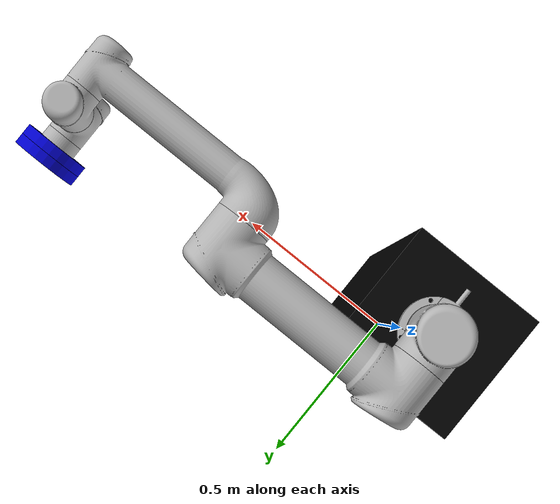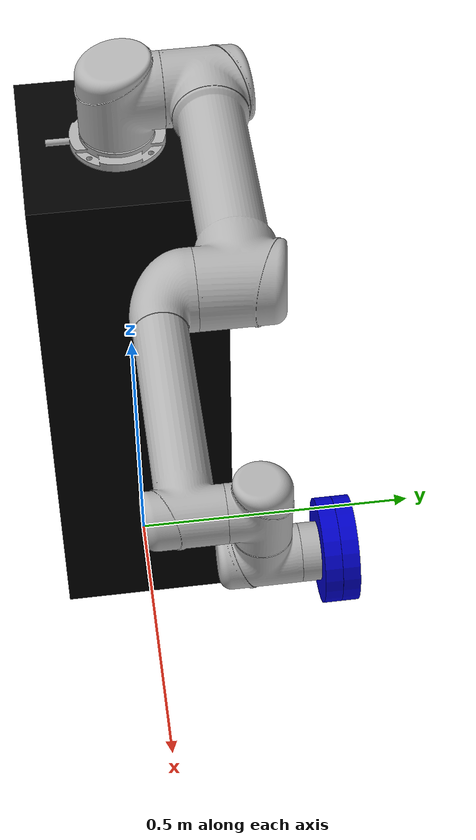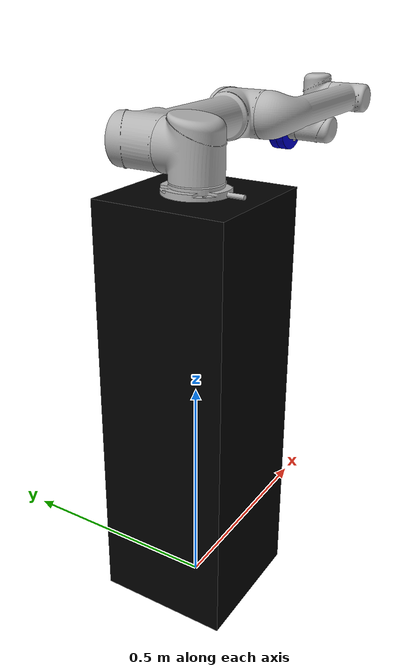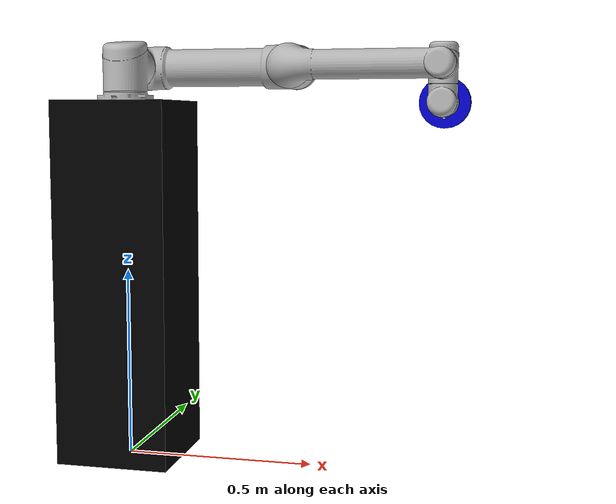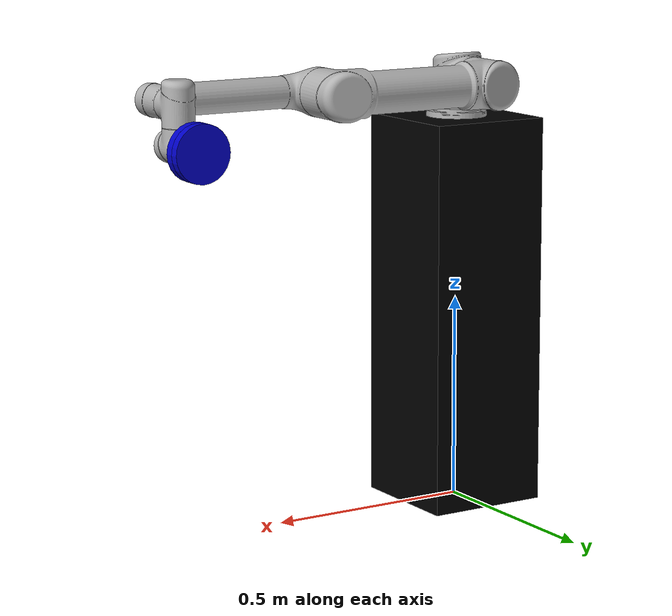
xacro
<?xml version="1.0"?>
<robot xmlns:xacro="http://wiki.ros.org/xacro"
       name="ur5" >

  <xacro:arg name="transmission_hw_interface" default="hardware_interface/PositionJointInterface"/>

  <!-- common stuff -->
  <xacro:include filename="$(find ur_description)/urdf/common.gazebo.xacro" />

  <!-- ur5 -->
  <xacro:include filename="$(find ur_description)/urdf/ur5.urdf.xacro" />

  <!-- arm -->
  <xacro:ur5_robot prefix="" joint_limited="false"
    transmission_hw_interface="$(arg transmission_hw_interface)"
  />

  <link name="world" />

  <joint name="pedestal_joint" type="fixed">
    <origin rpy="0 0 0" xyz="0.0 0.0 0.0"/>
    <parent link="world"/>
    <child link="pedestal_link"/>
  </joint>

  <link name="pedestal_link">
    <visual>
      <origin xyz="0 0 0.475"/>
      <geometry>
        <box size="0.3 0.3 0.95"/>
      </geometry>
      <material name="pedestal_color">
        <color rgba="0 0 0 1"/>
      </material>
    </visual>
    <collision>
      <origin xyz="0 0 0.475"/>
      <geometry>
        <box size="0.3 0.3 0.95"/>
      </geometry>
    </collision>
    <inertial>
      <mass value="500"/>
      <origin rpy="0 0 0" xyz="0 0 0"/>
      <inertia ixx="0.001" ixy="0" ixz="0" iyy="0.001" iyz="0" izz="0.001"/>
    </inertial>
  </link>
  <gazebo reference="pedestal_link">
    <material>Gazebo/DarkGray</material>
  </gazebo>

  <joint name="ur5_to_pedestal" type="fixed">
    <parent link="world"/>
    <child link="base_link"/>
    <origin rpy="0 0 0" xyz="0.0 0.0 0.95"/>
  </joint>

</robot>

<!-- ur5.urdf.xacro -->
<robot xmlns:xacro="http://wiki.ros.org/xacro">

  <xacro:include filename="$(find ur_description)/urdf/ur.transmission.xacro" />
  <xacro:include filename="$(find ur_description)/urdf/ur.gazebo.xacro" />

  <xacro:macro name="cylinder_inertial" params="radius length mass *origin">
    <inertial>
      <mass value="${mass}" />
      <xacro:insert_block name="origin" />
      <inertia ixx="${0.0833333 * mass * (3 * radius * radius + length * length)}" ixy="0.0" ixz="0.0"
        iyy="${0.0833333 * mass * (3 * radius * radius + length * length)}" iyz="0.0"
        izz="${0.5 * mass * radius * radius}" />
    </inertial>
  </xacro:macro>

  <xacro:macro name="ur5_robot" params="prefix joint_limited
    shoulder_pan_lower_limit:=${-pi}    shoulder_pan_upper_limit:=${pi}
    shoulder_lift_lower_limit:=${-pi}    shoulder_lift_upper_limit:=${pi}
    elbow_joint_lower_limit:=${-pi}    elbow_joint_upper_limit:=${pi}
    wrist_1_lower_limit:=${-pi}    wrist_1_upper_limit:=${pi}
    wrist_2_lower_limit:=${-pi}    wrist_2_upper_limit:=${pi}
    wrist_3_lower_limit:=${-pi}    wrist_3_upper_limit:=${pi}
    transmission_hw_interface:=hardware_interface/PositionJointInterface
    safety_limits:=false safety_pos_margin:=0.15
    safety_k_position:=20">

    <!-- Inertia parameters -->
    <xacro:property name="base_mass" value="4.0" />  <!-- This mass might be incorrect -->
    <xacro:property name="shoulder_mass" value="3.7000" />
    <xacro:property name="upper_arm_mass" value="8.3930" />
    <xacro:property name="forearm_mass" value="2.2750" />
    <xacro:property name="wrist_1_mass" value="1.2190" />
    <xacro:property name="wrist_2_mass" value="1.2190" />
    <xacro:property name="wrist_3_mass" value="0.1879" />

    <xacro:property name="shoulder_cog" value="0.0 0.00193 -0.02561" />
    <xacro:property name="upper_arm_cog" value="0.0 -0.024201 0.2125" />
    <xacro:property name="forearm_cog" value="0.0 0.0265 0.11993" />
    <xacro:property name="wrist_1_cog" value="0.0 0.110949 0.01634" />
    <xacro:property name="wrist_2_cog" value="0.0 0.0018 0.11099" />
    <xacro:property name="wrist_3_cog" value="0.0 0.001159 0.0" />

    <!-- Kinematic model -->
    <!-- Properties from urcontrol.conf -->
    <xacro:property name="d1" value="0.089159" />
    <xacro:property name="a2" value="-0.42500" />
    <xacro:property name="a3" value="-0.39225" />
    <xacro:property name="d4" value="0.10915" />
    <xacro:property name="d5" value="0.09465" />
    <xacro:property name="d6" value="0.0823" />

    <!-- Arbitrary offsets for shoulder/elbow joints -->
    <xacro:property name="shoulder_offset" value="0.13585" />  <!-- measured from model -->
    <xacro:property name="elbow_offset" value="-0.1197" /> <!-- measured from model -->

    <!-- link lengths used in model -->
    <xacro:property name="shoulder_height" value="${d1}" />
    <xacro:property name="upper_arm_length" value="${-a2}" />
    <xacro:property name="forearm_length" value="${-a3}" />
    <xacro:property name="wrist_1_length" value="${d4 - elbow_offset - shoulder_offset}" />
    <xacro:property name="wrist_2_length" value="${d5}" />
    <xacro:property name="wrist_3_length" value="${d6}" />
    <!--property name="shoulder_height" value="0.089159" /-->
    <!--property name="shoulder_offset" value="0.13585" /-->  <!-- shoulder_offset - elbow_offset + wrist_1_length = 0.10915 -->
    <!--property name="upper_arm_length" value="0.42500" /-->
    <!--property name="elbow_offset" value="0.1197" /-->       <!-- CAD measured -->
    <!--property name="forearm_length" value="0.39225" /-->
    <!--property name="wrist_1_length" value="0.093" /-->     <!-- CAD measured -->
    <!--property name="wrist_2_length" value="0.09465" /-->   <!-- In CAD this distance is 0.930, but in the spec it is 0.09465 -->
    <!--property name="wrist_3_length" value="0.0823" /-->

    <xacro:property name="shoulder_radius" value="0.060" />   <!-- manually measured -->
    <xacro:property name="upper_arm_radius" value="0.054" />  <!-- manually measured -->
    <xacro:property name="elbow_radius" value="0.060" />      <!-- manually measured -->
    <xacro:property name="forearm_radius" value="0.040" />    <!-- manually measured -->
    <xacro:property name="wrist_radius" value="0.045" />      <!-- manually measured -->

    <link name="${prefix}base_link" >
      <visual>
        <geometry>
          <mesh filename="package://ur_description/meshes/ur5/visual/base.dae" />
        </geometry>
        <material name="LightGrey">
          <color rgba="0.7 0.7 0.7 1.0"/>
        </material>
      </visual>
      <collision>
        <geometry>
          <mesh filename="package://ur_description/meshes/ur5/collision/base.stl" />
        </geometry>
      </collision>
      <xacro:cylinder_inertial radius="0.06" length="0.05" mass="${base_mass}">
        <origin xyz="0.0 0.0 0.0" rpy="0 0 0" />
      </xacro:cylinder_inertial>
    </link>

    <joint name="${prefix}shoulder_pan_joint" type="revolute">
      <parent link="${prefix}base_link" />
      <child link = "${prefix}shoulder_link" />
      <origin xyz="0.0 0.0 ${shoulder_height}" rpy="0.0 0.0 0.0" />
      <axis xyz="0 0 1" />
      <xacro:unless value="${joint_limited}">
        <limit lower="${-2.0 * pi}" upper="${2.0 * pi}" effort="150.0" velocity="3.15"/>
        <xacro:if value="${safety_limits}">
          <safety_controller soft_lower_limit="${-2.0 * pi + safety_pos_margin}" soft_upper_limit="${2.0 * pi - safety_pos_margin}" k_position="${safety_k_position}" k_velocity="0.0"/>
        </xacro:if>
      </xacro:unless>
      <xacro:if value="${joint_limited}">
        <limit lower="${shoulder_pan_lower_limit}" upper="${shoulder_pan_upper_limit}" effort="150.0" velocity="3.15"/>
        <xacro:if value="${safety_limits}">
          <safety_controller soft_lower_limit="${shoulder_pan_lower_limit + safety_pos_margin}" soft_upper_limit="${shoulder_pan_upper_limit - safety_pos_margin}" k_position="${safety_k_position}" k_velocity="0.0"/>
        </xacro:if>
      </xacro:if>
      <dynamics damping="0.0" friction="0.0"/>
    </joint>

    <link name="${prefix}shoulder_link">
      <visual>
        <geometry>
          <mesh filename="package://ur_description/meshes/ur5/visual/shoulder.dae" />
        </geometry>
        <material name="LightGrey">
          <color rgba="0.7 0.7 0.7 1.0"/>
        </material>
      </visual>
      <collision>
        <geometry>
          <mesh filename="package://ur_description/meshes/ur5/collision/shoulder.stl" />
        </geometry>
      </collision>
      <xacro:cylinder_inertial radius="0.06" length="0.15" mass="${shoulder_mass}">
        <origin xyz="0.0 0.0 0.0" rpy="0 0 0" />
      </xacro:cylinder_inertial>
    </link>

    <joint name="${prefix}shoulder_lift_joint" type="revolute">
      <parent link="${prefix}shoulder_link" />
      <child link = "${prefix}upper_arm_link" />
      <origin xyz="0.0 ${shoulder_offset} 0.0" rpy="0.0 ${pi / 2.0} 0.0" />
      <axis xyz="0 1 0" />
      <xacro:unless value="${joint_limited}">
        <limit lower="${-2.0 * pi}" upper="${2.0 * pi}" effort="150.0" velocity="3.15"/>
        <xacro:if value="${safety_limits}">
          <safety_controller soft_lower_limit="${-2.0 * pi + safety_pos_margin}" soft_upper_limit="${2.0 * pi - safety_pos_margin}" k_position="${safety_k_position}" k_velocity="0.0"/>
        </xacro:if>
      </xacro:unless>
      <xacro:if value="${joint_limited}">
        <limit lower="${shoulder_lift_lower_limit}" upper="${shoulder_lift_upper_limit}" effort="150.0" velocity="3.15"/>
        <xacro:if value="${safety_limits}">
          <safety_controller soft_lower_limit="${shoulder_lift_lower_limit + safety_pos_margin}" soft_upper_limit="${shoulder_lift_upper_limit - safety_pos_margin}" k_position="${safety_k_position}" k_velocity="0.0"/>
        </xacro:if>
      </xacro:if>
      <dynamics damping="0.0" friction="0.0"/>
    </joint>

    <link name="${prefix}upper_arm_link">
      <visual>
        <geometry>
          <mesh filename="package://ur_description/meshes/ur5/visual/upperarm.dae" />
        </geometry>
        <material name="LightGrey">
          <color rgba="0.7 0.7 0.7 1.0"/>
        </material>
      </visual>
      <collision>
        <geometry>
          <mesh filename="package://ur_description/meshes/ur5/collision/upperarm.stl" />
        </geometry>
      </collision>
      <xacro:cylinder_inertial radius="0.06" length="0.56" mass="${upper_arm_mass}">
        <origin xyz="0.0 0.0 0.28" rpy="0 0 0" />
      </xacro:cylinder_inertial>
    </link>

    <joint name="${prefix}elbow_joint" type="revolute">
      <parent link="${prefix}upper_arm_link" />
      <child link = "${prefix}forearm_link" />
      <origin xyz="0.0 ${elbow_offset} ${upper_arm_length}" rpy="0.0 0.0 0.0" />
      <axis xyz="0 1 0" />
      <xacro:unless value="${joint_limited}">
        <limit lower="${-pi}" upper="${pi}" effort="150.0" velocity="3.15"/>
        <xacro:if value="${safety_limits}">
          <safety_controller soft_lower_limit="${-2.0 * pi + safety_pos_margin}" soft_upper_limit="${2.0 * pi - safety_pos_margin}" k_position="${safety_k_position}" k_velocity="0.0"/>
        </xacro:if>
      </xacro:unless>
      <xacro:if value="${joint_limited}">
        <limit lower="${elbow_joint_lower_limit}" upper="${elbow_joint_upper_limit}" effort="150.0" velocity="3.15"/>
        <xacro:if value="${safety_limits}">
          <safety_controller soft_lower_limit="${elbow_joint_lower_limit + safety_pos_margin}" soft_upper_limit="${elbow_joint_upper_limit - safety_pos_margin}" k_position="${safety_k_position}" k_velocity="0.0"/>
        </xacro:if>
      </xacro:if>
      <dynamics damping="0.0" friction="0.0"/>
    </joint>

    <link name="${prefix}forearm_link">
      <visual>
        <geometry>
          <mesh filename="package://ur_description/meshes/ur5/visual/forearm.dae" />
        </geometry>
        <material name="LightGrey">
          <color rgba="0.7 0.7 0.7 1.0"/>
        </material>
      </visual>
      <collision>
        <geometry>
          <mesh filename="package://ur_description/meshes/ur5/collision/forearm.stl" />
        </geometry>
      </collision>
      <xacro:cylinder_inertial radius="0.06" length="${-a3}" mass="${forearm_mass}">
        <origin xyz="0.0 0.0 ${-a3/2}" rpy="0 0 0" />
      </xacro:cylinder_inertial>
    </link>

    <joint name="${prefix}wrist_1_joint" type="revolute">
      <parent link="${prefix}forearm_link" />
      <child link = "${prefix}wrist_1_link" />
      <origin xyz="0.0 0.0 ${forearm_length}" rpy="0.0 ${pi / 2.0} 0.0" />
      <axis xyz="0 1 0" />
      <xacro:unless value="${joint_limited}">
        <limit lower="${-2.0 * pi}" upper="${2.0 * pi}" effort="28.0" velocity="3.2"/>
        <xacro:if value="${safety_limits}">
          <safety_controller soft_lower_limit="${-2.0 * pi + safety_pos_margin}" soft_upper_limit="${2.0 * pi - safety_pos_margin}" k_position="${safety_k_position}" k_velocity="0.0"/>
        </xacro:if>
      </xacro:unless>
      <xacro:if value="${joint_limited}">
        <limit lower="${wrist_1_lower_limit}" upper="${wrist_1_upper_limit}" effort="28.0" velocity="3.2"/>
        <xacro:if value="${safety_limits}">
          <safety_controller soft_lower_limit="${wrist_1_lower_limit + safety_pos_margin}" soft_upper_limit="${wrist_1_upper_limit - safety_pos_margin}" k_position="${safety_k_position}" k_velocity="0.0"/>
        </xacro:if>
      </xacro:if>
      <dynamics damping="0.0" friction="0.0"/>
    </joint>

    <link name="${prefix}wrist_1_link">
      <visual>
        <geometry>
          <mesh filename="package://ur_description/meshes/ur5/visual/wrist1.dae" />
        </geometry>
        <material name="LightGrey">
          <color rgba="0.7 0.7 0.7 1.0"/>
        </material>
      </visual>
      <collision>
        <geometry>
          <mesh filename="package://ur_description/meshes/ur5/collision/wrist1.stl" />
        </geometry>
      </collision>
      <xacro:cylinder_inertial radius="0.06" length="0.12" mass="${wrist_1_mass}">
        <origin xyz="0.0 ${wrist_1_length} 0.0" rpy="0 0 0" />
      </xacro:cylinder_inertial>
    </link>

    <joint name="${prefix}wrist_2_joint" type="revolute">
      <parent link="${prefix}wrist_1_link" />
      <child link = "${prefix}wrist_2_link" />
      <origin xyz="0.0 ${wrist_1_length} 0.0" rpy="0.0 0.0 0.0" />
      <axis xyz="0 0 1" />
      <xacro:unless value="${joint_limited}">
        <limit lower="${-2.0 * pi}" upper="${2.0 * pi}" effort="28.0" velocity="3.2"/>
        <xacro:if value="${safety_limits}">
          <safety_controller soft_lower_limit="${-2.0 * pi + safety_pos_margin}" soft_upper_limit="${2.0 * pi - safety_pos_margin}" k_position="${safety_k_position}" k_velocity="0.0"/>
        </xacro:if>
      </xacro:unless>
      <xacro:if value="${joint_limited}">
        <limit lower="${wrist_2_lower_limit}" upper="${wrist_2_upper_limit}" effort="28.0" velocity="3.2"/>
        <xacro:if value="${safety_limits}">
          <safety_controller soft_lower_limit="${wrist_2_lower_limit + safety_pos_margin}" soft_upper_limit="${wrist_2_upper_limit - safety_pos_margin}" k_position="${safety_k_position}" k_velocity="0.0"/>
        </xacro:if>
      </xacro:if>
      <dynamics damping="0.0" friction="0.0"/>
    </joint>

    <link name="${prefix}wrist_2_link">
      <visual>
        <geometry>
          <mesh filename="package://ur_description/meshes/ur5/visual/wrist2.dae" />
        </geometry>
        <material name="LightGrey">
          <color rgba="0.7 0.7 0.7 1.0"/>
        </material>
      </visual>
      <collision>
        <geometry>
          <mesh filename="package://ur_description/meshes/ur5/collision/wrist2.stl" />
        </geometry>
      </collision>
      <xacro:cylinder_inertial radius="0.06" length="0.12" mass="${wrist_2_mass}">
        <origin xyz="0.0 0.0 ${wrist_2_length}" rpy="0 0 0" />
      </xacro:cylinder_inertial>
    </link>

    <joint name="${prefix}wrist_3_joint" type="revolute">
      <parent link="${prefix}wrist_2_link" />
      <child link = "${prefix}wrist_3_link" />
      <origin xyz="0.0 0.0 ${wrist_2_length}" rpy="0.0 0.0 0.0" />
      <axis xyz="0 1 0" />
      <xacro:unless value="${joint_limited}">
        <limit lower="${-2.0 * pi}" upper="${2.0 * pi}" effort="28.0" velocity="3.2"/>
        <xacro:if value="${safety_limits}">
          <safety_controller soft_lower_limit="${-2.0 * pi + safety_pos_margin}" soft_upper_limit="${2.0 * pi - safety_pos_margin}" k_position="${safety_k_position}" k_velocity="0.0"/>
        </xacro:if>
      </xacro:unless>
      <xacro:if value="${joint_limited}">
        <limit lower="${wrist_3_lower_limit}" upper="${wrist_3_upper_limit}" effort="28.0" velocity="3.2"/>
        <xacro:if value="${safety_limits}">
          <safety_controller soft_lower_limit="${wrist_3_lower_limit + safety_pos_margin}" soft_upper_limit="${wrist_3_upper_limit - safety_pos_margin}" k_position="${safety_k_position}" k_velocity="0.0"/>
        </xacro:if>
      </xacro:if>
      <dynamics damping="0.0" friction="0.0"/>
    </joint>

    <link name="${prefix}wrist_3_link">
      <visual>
        <geometry>
          <mesh filename="package://ur_description/meshes/ur5/visual/wrist3.dae" />
        </geometry>
        <material name="LightGrey">
          <color rgba="0.7 0.7 0.7 1.0"/>
        </material>
      </visual>
      <collision>
        <geometry>
          <mesh filename="package://ur_description/meshes/ur5/collision/wrist3.stl" />
        </geometry>
      </collision>
      <xacro:cylinder_inertial radius="0.0375" length="0.0345" mass="${wrist_3_mass}">
        <origin xyz="0.0 ${wrist_3_length - 0.0345/2} 0.0" rpy="${pi/2} 0 0" />
      </xacro:cylinder_inertial>
    </link>

    <joint name="${prefix}ee_fixed_joint" type="fixed">
      <parent link="${prefix}wrist_3_link" />
      <child link = "${prefix}ee_link" />
      <origin xyz="0.0 ${wrist_3_length} 0.0" rpy="0.0 0.0 ${pi/2.0}" />
    </joint>

    <link name="${prefix}ee_link">
      <collision>
        <geometry>
          <box size="0.01 0.01 0.01"/>
        </geometry>
        <origin rpy="0 0 0" xyz="-0.01 0 0"/>
      </collision>
    </link>

    <xacro:ur_arm_transmission prefix="${prefix}" hw_interface="${transmission_hw_interface}" />
    <xacro:ur_arm_gazebo prefix="${prefix}" />

    <!-- ROS base_link to UR 'Base' Coordinates transform -->
    <link name="${prefix}base"/>
    <joint name="${prefix}base_link-base_fixed_joint" type="fixed">
      <!-- NOTE: this rotation is only needed as long as base_link itself is
                 not corrected wrt the real robot (ie: rotated over 180
                 degrees)
      -->
      <origin xyz="0 0 0" rpy="0 0 ${-pi}"/>
      <parent link="${prefix}base_link"/>
      <child link="${prefix}base"/>
    </joint>

    <!-- Frame coincident with all-zeros TCP on UR controller -->
    <link name="${prefix}tool0"/>
    <joint name="${prefix}wrist_3_link-tool0_fixed_joint" type="fixed">
      <origin xyz="0 ${wrist_3_length} 0" rpy="${pi/-2.0} 0 0"/>
      <parent link="${prefix}wrist_3_link"/>
      <child link="${prefix}tool0"/>
    </joint>

  <!-- Vacuum Gripper -->
  <joint name="${prefix}tool0_to_gripper_base" type="fixed">
    <parent link="${prefix}tool0"/>
    <child link="${prefix}gripper_base"/>
  </joint>

   <link name="${prefix}gripper_base">
    <visual>
      <geometry>
        <cylinder length="0.022043" radius="0.067187"/>
      </geometry>
      <material name="blue">
        <color rgba="0 0 .8 1"/>
      </material>
    </visual>
    <collision>
      <geometry>
        <cylinder length="0.022043" radius="0.067187"/>
      </geometry>
    </collision>
    <inertial>
      <mass value="0.00001"/>
      <inertia ixx="0.14583300" ixy="0.00000000" ixz="0.0" iyy="0.14583300" iyz="0.0" izz="0.12500000"/>
    </inertial>
  </link>

  <joint name="${prefix}gripper_base_to_gripper" type="revolute">
      <parent link="${prefix}gripper_base" />
      <child link="${prefix}vacuum_gripper_link" />
      <origin rpy="0 0 0" xyz="0 0 0.0221" />
      <limit effort="30" velocity="1.0" lower="0" upper="0" />
    </joint>

  <link name="${prefix}vacuum_gripper_link">

    <visual>
      <geometry>
        <cylinder length="0.022043" radius="0.067187"/>
      </geometry>
      <material name="blue">
        <color rgba="0 0 .8 1"/>
      </material>
    </visual>
    <collision>
      <geometry>
        <cylinder length="0.022043" radius="0.067187"/>
      </geometry>
    </collision>
    <inertial>
      <mass value="0.00001"/>
      <inertia ixx="0.14583300" ixy="0.00000000" ixz="0.0" iyy="0.14583300" iyz="0.0" izz="0.12500000"/>
    </inertial>
  </link>

  <gazebo>
      <plugin name="ros_logical_camera" filename="libROSLogicalCameraPlugin.so">
        <robotNamespace>/eyrc/vb/ur5/vacuum_gripper/logical_camera</robotNamespace>
      </plugin>
    </gazebo>

    <gazebo reference="vacuum_gripper_link">
      <material>Gazebo/DarkGray</material>
    </gazebo>

    <gazebo reference="vacuum_gripper_link">

      <sensor name="vacuum_gripper_link_logical_camera" type="logical_camera">

        <pose frame=''>-0.065 0 0 0 0 0</pose>

        <logical_camera>
          <near>0.06</near>
          <far>0.09</far>
          <horizontal_fov>1.1</horizontal_fov>
          <aspect_ratio>1.5</aspect_ratio>
        </logical_camera>

        <visualize>true</visualize>
        <always_on>true</always_on>
        <update_rate>10</update_rate>
        <topic>logical_camera</topic>
      </sensor>

    </gazebo>

  </xacro:macro>
</robot>
